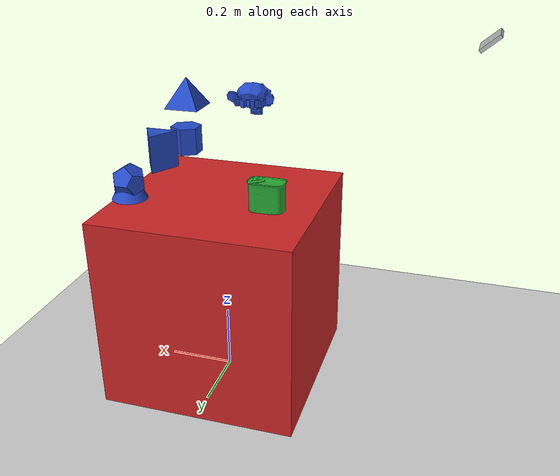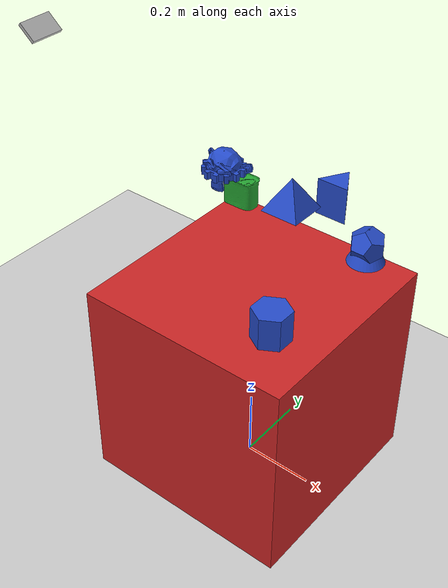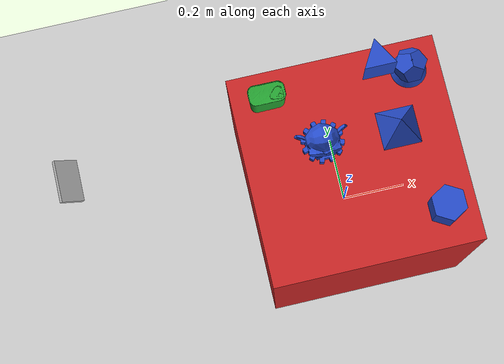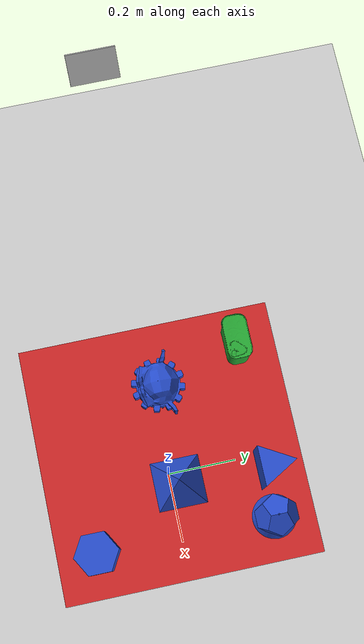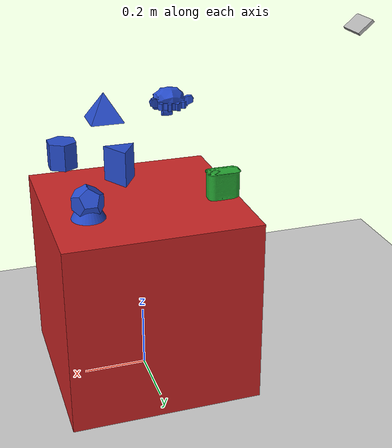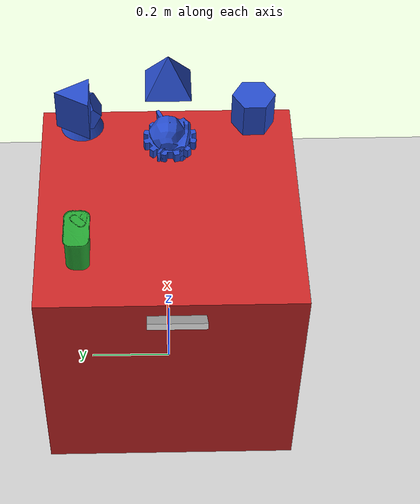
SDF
<sdf version="1.4">
 <world name="default">
  <include><uri>model://ground_plane</uri></include>
  <include><uri>model://demo_table</uri><name>demo_table1</name><pose>0 0 0.3 0 0 0</pose></include>
  <include><uri>model://demo_spam</uri><name>demo_spam1</name><pose>-0.2 0.2 0.7 0 0 0</pose></include>
  <include><uri>model://cone</uri><name>cone1</name><pose>0.2 0.2 0.7 0 0 0</pose></include>
  <include><uri>model://demo_cylinder</uri><name>demo_cylinder1</name><pose>0.2 -0.2 0.7 0 0 0</pose></include>
  <include><uri>model://prism_hex</uri><name>prism_hex1</name><pose>0.2 -0.2 0.7 0 0 0</pose></include>
  <include><uri>model://prism_tri</uri><name>prism_tri1</name><pose>0.1 0.2 0.8 0 0 0</pose></include>
  <include><uri>model://tetrahedron</uri><name>tetrahedron1</name><pose>0.1 0.0 0.9 0 0 0</pose></include>
  <include>
   <uri>model://tetrahedron_regular</uri>
   <name>tetrahedron_regular1</name>
   <pose>-0.1 0.0 0.9 0 0 0</pose>
  </include>
  <include><uri>model://dodecahedron</uri><name>dodecahedron1</name><pose>0.2 0.2 0.7 0 0 0</pose></include>
  <include><uri>model://gears</uri><name>gears1</name><pose>-0.1 0.0 0.9 0 0 0</pose></include>
  <include><uri>model://suzanne</uri><name>suzanne1</name><pose>-0.1 0.0 0.9 0 0 0</pose></include>
  <include><uri>model://sun</uri></include>
  <light name="user_point_light_0" type="point">
   <pose>0.573839 -0.613666 1 0 -0 0</pose>
   <diffuse>0.5 0.5 0.5 1</diffuse>
   <specular>0.1 0.1 0.1 1</specular>
   <attenuation>
    <range>20</range>
    <constant>0.5</constant>
    <linear>0.01</linear>
    <quadratic>0.001</quadratic>
   </attenuation>
   <cast_shadows>0</cast_shadows>
   <direction>0 0 -1</direction>
  </light>
  <light name="user_point_light_1" type="point">
   <pose>0.573839 -0.613666 1 0 -0 0</pose>
   <diffuse>0.5 0.5 0.5 1</diffuse>
   <specular>0.1 0.1 0.1 1</specular>
   <attenuation>
    <range>20</range>
    <constant>0.5</constant>
    <linear>0.01</linear>
    <quadratic>0.001</quadratic>
   </attenuation>
   <cast_shadows>0</cast_shadows>
   <direction>0 0 -1</direction>
  </light>
  <light name="user_spot_light_0" type="spot">
   <pose>-1.7095 -0.748352 1 0 -0 0</pose>
   <diffuse>0.5 0.5 0.5 1</diffuse>
   <specular>0.1 0.1 0.1 1</specular>
   <direction>0 0 -1</direction>
   <attenuation>
    <range>20</range>
    <constant>0.5</constant>
    <linear>0.01</linear>
    <quadratic>0.001</quadratic>
   </attenuation>
   <cast_shadows>0</cast_shadows>
   <spot><inner_angle>0.6</inner_angle><outer_angle>1</outer_angle><falloff>1</falloff></spot>
  </light>
  <model name="rgb_cam">
   <static>1</static>
   <pose>-0.715121 0.0 1.092078 0 0.6991 0</pose>
   <link name="rgb_camera">
    <inertial>
     <mass>0.1</mass>
     <inertia>
      <ixx>8.41666666667e-05</ixx>
      <ixy>0</ixy>
      <ixz>0</ixz>
      <iyy>3.08333333333e-05</iyy>
      <iyz>0</iyz>
      <izz>0.000113333333333</izz>
     </inertia>
    </inertial>
    <collision name="collision"><geometry><box><size>0.060 0.1 0.010</size></box></geometry></collision>
    <visual name="visual"><geometry><box><size>0.060 0.1 0.010</size></box></geometry></visual>
    <sensor name="camera" type="camera">
     <camera>
      <horizontal_fov>1.047</horizontal_fov>
      <image><width>640</width><height>480</height><format>R8G8B8</format></image>
      <clip><near>0.1</near><far>100</far></clip>
     </camera>
     <always_on>1</always_on>
     <update_rate>30</update_rate>
     <visualize>true</visualize>
     <plugin filename="libgazebo_ros_camera.so" name="camera_in_ros">
      <robotNamespace>dynamic_objects</robotNamespace>
      <cameraName>camera</cameraName>
      <imageTopicName>raw_image</imageTopicName>
      <cameraInfoTopicName>info_image</cameraInfoTopicName>
      <FrameName>cameraImage</FrameName>
      <Cy>0</Cy>
      <Cx>0</Cx>
      <updateRate>10.0</updateRate>
     </plugin>
    </sensor>
   </link>
  </model>
  <joint name="joint_to_world" type="fixed"><parent>world</parent><child>rgb_camera::link</child></joint>
  <atmosphere type="adiabatic"/>
  <scene><sky><clouds><speed>12</speed></clouds></sky></scene>
  <physics name="default_physics" default="0" type="ode">
   <max_step_size>0.001</max_step_size>
   <real_time_factor>1</real_time_factor>
   <real_time_update_rate>1000</real_time_update_rate>
  </physics>
  <plugin name="dynamic_world_plugin" filename="libdynamic_world_plugin.so">
   <update_frequency>1.0</update_frequency>
   <x_max>0.2</x_max>
   <x_min>-0.2</x_min>
   <y_max>0.2</y_max>
   <y_min>-0.2</y_min>
   <z_max>0.7</z_max>
   <z_min>0.7</z_min>
   <model_to_track_name>demo_spam1</model_to_track_name>
   <x_max_distractors>0.2</x_max_distractors>
   <x_min_distractors>-0.2</x_min_distractors>
   <y_max_distractors>0.2</y_max_distractors>
   <y_min_distractors>-0.2</y_min_distractors>
   <z_max_distractors>0.7</z_max_distractors>
   <z_min_distractors>0.7</z_min_distractors>
   <z_increment_percentage>0.1</z_increment_percentage>
   <roll_max>1.57</roll_max>
   <roll_min>-1.57</roll_min>
   <pitch_max>1.57</pitch_max>
   <pitch_min>-1.57</pitch_min>
   <yaw_max>1.57</yaw_max>
   <yaw_min>-1.57</yaw_min>
   <light_x_max>2.0</light_x_max>
   <light_x_min>-2.0</light_x_min>
   <light_y_max>2.0</light_y_max>
   <light_y_min>-2.0</light_y_min>
   <light_z_max>3.0</light_z_max>
   <light_z_min>1.0</light_z_min>
   <light_roll_max>1.57</light_roll_max>
   <light_roll_min>-1.57</light_roll_min>
   <light_pitch_max>1.57</light_pitch_max>
   <light_pitch_min>-1.57</light_pitch_min>
   <light_yaw_max>1.57</light_yaw_max>
   <light_yaw_min>-1.57</light_yaw_min>
   <cam_x_max>-0.615121</cam_x_max>
   <cam_x_min>-0.815121</cam_x_min>
   <cam_y_max>0.1</cam_y_max>
   <cam_y_min>-0.1</cam_y_min>
   <cam_z_max>1.192078</cam_z_max>
   <cam_z_min>0.992078</cam_z_min>
   <cam_roll_max>0.03</cam_roll_max>
   <cam_roll_min>-0.03</cam_roll_min>
   <cam_pitch_max>0.7291</cam_pitch_max>
   <cam_pitch_min>0.6691</cam_pitch_min>
   <cam_yaw_max>0.03</cam_yaw_max>
   <cam_yaw_min>-0.03</cam_yaw_min>
  </plugin>
 </world>
</sdf>

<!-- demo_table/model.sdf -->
<sdf version='1.4'>
  <model name="demo_table">
      <static>1</static>
      <link name='link'>
        <inertial>
          <mass>0.25</mass>
          <inertia>
            <ixx>0.015</ixx>
            <ixy>0.000000</ixy>
            <ixz>0.000000</ixz>
            <iyy>0.015</iyy>
            <iyz>0.000000</iyz>
            <izz>0.015</izz>
          </inertia>
        </inertial>
        <collision name='collision'>
          <geometry>
            <box>
              <size>0.6 0.6 0.6</size>
            </box>
          </geometry>
          <surface>
            <friction>
              <ode>
                <mu>30.0</mu>
                <mu2>30.0</mu2>
              </ode>
            </friction>
            <contact>
              <ode>
                <kp>1000000.0</kp>
                <kd>100.0</kd>
                <max_vel>1.0</max_vel>
                <min_depth>0.002</min_depth>
              </ode>
            </contact>
          </surface>
        </collision>
        <visual name='visual'>
          <geometry>
            <box>
              <size>0.6 0.6 0.6</size>
            </box>
          </geometry>
          <material>
            <script>
              <uri>file://media/materials/scripts/gazebo.material</uri>
              <name>Gazebo/Red</name>
            </script>
          </material>
        </visual>
        <velocity_decay>
          <linear>0.000000</linear>
          <angular>0.000000</angular>
        </velocity_decay>
        <self_collide>0</self_collide>
        <kinematic>0</kinematic>
        <gravity>1</gravity>
      </link>
  </model>
</sdf>

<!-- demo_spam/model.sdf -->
<sdf version='1.4'>
  <model name="demo_spam">
      <static>0</static>
      <link name='link'>
        <inertial>
          <mass>0.25</mass>
          <inertia>
            <ixx>0.00015</ixx>
            <ixy>0.000000</ixy>
            <ixz>0.000000</ixz>
            <iyy>0.00015</iyy>
            <iyz>0.000000</iyz>
            <izz>0.00015</izz>
          </inertia>
        </inertial>
        <collision name='collision'>
          <geometry>
            <box>
              <size>0.102 0.0601 0.0835</size>
            </box>
          </geometry>
          <surface>
            <friction>
              <ode>
                <mu>30.0</mu>
                <mu2>30.0</mu2>
              </ode>
            </friction>
            <contact>
              <ode>
                <kp>1000000.0</kp>
                <kd>100.0</kd>
                <max_vel>1.0</max_vel>
                <min_depth>0.002</min_depth>
              </ode>
            </contact>
          </surface>
        </collision>
        <visual name='visual'>
          <geometry>
            <mesh>
              <uri>model://demo_spam/meshes/nontextured_fixed.stl</uri>
              <scale>1 1 1</scale>
            </mesh>
          </geometry>
          <material>
            <script>
              <uri>file://media/materials/scripts/gazebo.material</uri>
              <name>Gazebo/Green</name>
            </script>
          </material>
        </visual>
        <velocity_decay>
          <linear>0.000000</linear>
          <angular>0.000000</angular>
        </velocity_decay>
        <self_collide>0</self_collide>
        <kinematic>0</kinematic>
        <gravity>1</gravity>
      </link>
  </model>
</sdf>

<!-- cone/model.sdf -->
<sdf version='1.4'>
  <model name="cone">
      <static>0</static>
      <link name='link'>
        <inertial>
          <mass>0.25</mass>
          <inertia>
            <ixx>0.00015</ixx>
            <ixy>0.000000</ixy>
            <ixz>0.000000</ixz>
            <iyy>0.00015</iyy>
            <iyz>0.000000</iyz>
            <izz>0.00015</izz>
          </inertia>
        </inertial>
        <collision name='collision'>
          <geometry>
            <mesh>
              <uri>model://cone/meshes/cone.stl</uri>
              <scale>1 1 1</scale>
            </mesh>
          </geometry>
          <surface>
            <friction>
              <ode>
                <mu>30.0</mu>
                <mu2>30.0</mu2>
              </ode>
            </friction>
            <contact>
              <ode>
                <kp>1000000.0</kp>
                <kd>100.0</kd>
                <max_vel>1.0</max_vel>
                <min_depth>0.002</min_depth>
              </ode>
            </contact>
          </surface>
        </collision>
        <visual name='visual'>
          <geometry>
            <mesh>
              <uri>model://cone/meshes/cone.stl</uri>
              <scale>1 1 1</scale>
            </mesh>
          </geometry>
          <material>
            <script>
              <uri>file://media/materials/scripts/gazebo.material</uri>
              <name>Gazebo/Blue</name>
            </script>
          </material>
        </visual>
        <velocity_decay>
          <linear>0.000000</linear>
          <angular>0.000000</angular>
        </velocity_decay>
        <self_collide>0</self_collide>
        <kinematic>0</kinematic>
        <gravity>1</gravity>
      </link>
  </model>
</sdf>

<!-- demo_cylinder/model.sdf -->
<sdf version='1.4'>
  <model name="demo_cylinder">
      <static>0</static>
      <link name='link'>
        <inertial>
          <mass>0.25</mass>
          <inertia>
            <ixx>1.3125e-05</ixx>
            <ixy>0.000000</ixy>
            <ixz>0.000000</ixz>
            <iyy>1.3125e-05</iyy>
            <iyz>0.000000</iyz>
            <izz>1.125e-05</izz>
          </inertia>
        </inertial>
        <collision name='collision'>
          <geometry>
            <cylinder>
              <radius>0.03</radius>
              <length>0.06</length>
            </cylinder>
          </geometry>
          <surface>
            <friction>
              <ode>
                <mu>30.0</mu>
                <mu2>30.0</mu2>
              </ode>
            </friction>
            <contact>
              <ode>
                <kp>1000000.0</kp>
                <kd>100.0</kd>
                <max_vel>1.0</max_vel>
                <min_depth>0.002</min_depth>
              </ode>
            </contact>
          </surface>
        </collision>
        <visual name='visual'>
          <geometry>
            <cylinder>
              <radius>0.03</radius>
              <length>0.06</length>
            </cylinder>
          </geometry>
          <material>
            <script>
              <uri>file://media/materials/scripts/gazebo.material</uri>
              <name>Gazebo/Blue</name>
            </script>
          </material>
        </visual>
        <velocity_decay>
          <linear>0.000000</linear>
          <angular>0.000000</angular>
        </velocity_decay>
        <self_collide>0</self_collide>
        <kinematic>0</kinematic>
        <gravity>1</gravity>
      </link>
  </model>
</sdf>

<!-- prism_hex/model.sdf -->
<sdf version='1.4'>
  <model name="prism_hex">
      <static>0</static>
      <link name='link'>
        <inertial>
          <mass>0.25</mass>
          <inertia>
            <ixx>0.00015</ixx>
            <ixy>0.000000</ixy>
            <ixz>0.000000</ixz>
            <iyy>0.00015</iyy>
            <iyz>0.000000</iyz>
            <izz>0.00015</izz>
          </inertia>
        </inertial>
        <collision name='collision'>
          <geometry>
            <mesh>
              <uri>model://prism_hex/meshes/prism_hex.stl</uri>
              <scale>1 1 1</scale>
            </mesh>
          </geometry>
          <surface>
            <friction>
              <ode>
                <mu>30.0</mu>
                <mu2>30.0</mu2>
              </ode>
            </friction>
            <contact>
              <ode>
                <kp>1000000.0</kp>
                <kd>100.0</kd>
                <max_vel>1.0</max_vel>
                <min_depth>0.002</min_depth>
              </ode>
            </contact>
          </surface>
        </collision>
        <visual name='visual'>
          <geometry>
            <mesh>
              <uri>model://prism_hex/meshes/prism_hex.stl</uri>
              <scale>1 1 1</scale>
            </mesh>
          </geometry>
          <material>
            <script>
              <uri>file://media/materials/scripts/gazebo.material</uri>
              <name>Gazebo/Blue</name>
            </script>
          </material>
        </visual>
        <velocity_decay>
          <linear>0.000000</linear>
          <angular>0.000000</angular>
        </velocity_decay>
        <self_collide>0</self_collide>
        <kinematic>0</kinematic>
        <gravity>1</gravity>
      </link>
  </model>
</sdf>

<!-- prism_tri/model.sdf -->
<sdf version='1.4'>
  <model name="prism_tri">
      <static>0</static>
      <link name='link'>
        <inertial>
          <mass>0.25</mass>
          <inertia>
            <ixx>0.00015</ixx>
            <ixy>0.000000</ixy>
            <ixz>0.000000</ixz>
            <iyy>0.00015</iyy>
            <iyz>0.000000</iyz>
            <izz>0.00015</izz>
          </inertia>
        </inertial>
        <collision name='collision'>
          <geometry>
            <mesh>
              <uri>model://prism_tri/meshes/prism_tri.stl</uri>
              <scale>1 1 1</scale>
            </mesh>
          </geometry>
          <surface>
            <friction>
              <ode>
                <mu>30.0</mu>
                <mu2>30.0</mu2>
              </ode>
            </friction>
            <contact>
              <ode>
                <kp>1000000.0</kp>
                <kd>100.0</kd>
                <max_vel>1.0</max_vel>
                <min_depth>0.002</min_depth>
              </ode>
            </contact>
          </surface>
        </collision>
        <visual name='visual'>
          <geometry>
            <mesh>
              <uri>model://prism_tri/meshes/prism_tri.stl</uri>
              <scale>1 1 1</scale>
            </mesh>
          </geometry>
          <material>
            <script>
              <uri>file://media/materials/scripts/gazebo.material</uri>
              <name>Gazebo/Blue</name>
            </script>
          </material>
        </visual>
        <velocity_decay>
          <linear>0.000000</linear>
          <angular>0.000000</angular>
        </velocity_decay>
        <self_collide>0</self_collide>
        <kinematic>0</kinematic>
        <gravity>1</gravity>
      </link>
  </model>
</sdf>

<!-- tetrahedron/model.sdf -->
<sdf version='1.4'>
  <model name="tetrahedron">
      <static>0</static>
      <link name='link'>
        <inertial>
          <mass>0.25</mass>
          <inertia>
            <ixx>0.00015</ixx>
            <ixy>0.000000</ixy>
            <ixz>0.000000</ixz>
            <iyy>0.00015</iyy>
            <iyz>0.000000</iyz>
            <izz>0.00015</izz>
          </inertia>
        </inertial>
        <collision name='collision'>
          <geometry>
            <mesh>
              <uri>model://tetrahedron/meshes/tetrahedron.stl</uri>
              <scale>1 1 1</scale>
            </mesh>
          </geometry>
          <surface>
            <friction>
              <ode>
                <mu>30.0</mu>
                <mu2>30.0</mu2>
              </ode>
            </friction>
            <contact>
              <ode>
                <kp>1000000.0</kp>
                <kd>100.0</kd>
                <max_vel>1.0</max_vel>
                <min_depth>0.002</min_depth>
              </ode>
            </contact>
          </surface>
        </collision>
        <visual name='visual'>
          <geometry>
            <mesh>
              <uri>model://tetrahedron/meshes/tetrahedron.stl</uri>
              <scale>1 1 1</scale>
            </mesh>
          </geometry>
          <material>
            <script>
              <uri>file://media/materials/scripts/gazebo.material</uri>
              <name>Gazebo/Blue</name>
            </script>
          </material>
        </visual>
        <velocity_decay>
          <linear>0.000000</linear>
          <angular>0.000000</angular>
        </velocity_decay>
        <self_collide>0</self_collide>
        <kinematic>0</kinematic>
        <gravity>1</gravity>
      </link>
  </model>
</sdf>

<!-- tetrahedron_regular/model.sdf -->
<sdf version='1.4'>
  <model name="tetrahedron_regular">
      <static>0</static>
      <link name='link'>
        <inertial>
          <mass>0.25</mass>
          <inertia>
            <ixx>0.00015</ixx>
            <ixy>0.000000</ixy>
            <ixz>0.000000</ixz>
            <iyy>0.00015</iyy>
            <iyz>0.000000</iyz>
            <izz>0.00015</izz>
          </inertia>
        </inertial>
        <collision name='collision'>
          <geometry>
            <mesh>
              <uri>model://tetrahedron_regular/meshes/tetrahedron_regular.stl</uri>
              <scale>1 1 1</scale>
            </mesh>
          </geometry>
          <surface>
            <friction>
              <ode>
                <mu>30.0</mu>
                <mu2>30.0</mu2>
              </ode>
            </friction>
            <contact>
              <ode>
                <kp>1000000.0</kp>
                <kd>100.0</kd>
                <max_vel>1.0</max_vel>
                <min_depth>0.002</min_depth>
              </ode>
            </contact>
          </surface>
        </collision>
        <visual name='visual'>
          <geometry>
            <mesh>
              <uri>model://tetrahedron_regular/meshes/tetrahedron_regular.stl</uri>
              <scale>1 1 1</scale>
            </mesh>
          </geometry>
          <material>
            <script>
              <uri>file://media/materials/scripts/gazebo.material</uri>
              <name>Gazebo/Blue</name>
            </script>
          </material>
        </visual>
        <velocity_decay>
          <linear>0.000000</linear>
          <angular>0.000000</angular>
        </velocity_decay>
        <self_collide>0</self_collide>
        <kinematic>0</kinematic>
        <gravity>1</gravity>
      </link>
  </model>
</sdf>

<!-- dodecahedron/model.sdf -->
<sdf version='1.4'>
  <model name="dodecahedron">
      <static>0</static>
      <link name='link'>
        <inertial>
          <mass>0.25</mass>
          <inertia>
            <ixx>0.00015</ixx>
            <ixy>0.000000</ixy>
            <ixz>0.000000</ixz>
            <iyy>0.00015</iyy>
            <iyz>0.000000</iyz>
            <izz>0.00015</izz>
          </inertia>
        </inertial>
        <collision name='collision'>
          <geometry>
            <mesh>
              <uri>model://dodecahedron/meshes/dodecahedron.stl</uri>
              <scale>1 1 1</scale>
            </mesh>
          </geometry>
          <surface>
            <friction>
              <ode>
                <mu>30.0</mu>
                <mu2>30.0</mu2>
              </ode>
            </friction>
            <contact>
              <ode>
                <kp>1000000.0</kp>
                <kd>100.0</kd>
                <max_vel>1.0</max_vel>
                <min_depth>0.002</min_depth>
              </ode>
            </contact>
          </surface>
        </collision>
        <visual name='visual'>
          <geometry>
            <mesh>
              <uri>model://dodecahedron/meshes/dodecahedron.stl</uri>
              <scale>1 1 1</scale>
            </mesh>
          </geometry>
          <material>
            <script>
              <uri>file://media/materials/scripts/gazebo.material</uri>
              <name>Gazebo/Blue</name>
            </script>
          </material>
        </visual>
        <velocity_decay>
          <linear>0.000000</linear>
          <angular>0.000000</angular>
        </velocity_decay>
        <self_collide>0</self_collide>
        <kinematic>0</kinematic>
        <gravity>1</gravity>
      </link>
  </model>
</sdf>

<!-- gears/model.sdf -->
<sdf version='1.4'>
  <model name="gears">
      <static>0</static>
      <link name='link'>
        <inertial>
          <mass>0.25</mass>
          <inertia>
            <ixx>0.00015</ixx>
            <ixy>0.000000</ixy>
            <ixz>0.000000</ixz>
            <iyy>0.00015</iyy>
            <iyz>0.000000</iyz>
            <izz>0.00015</izz>
          </inertia>
        </inertial>
        <collision name='collision'>
          <geometry>
            <mesh>
              <uri>model://gears/meshes/gears.stl</uri>
              <scale>1 1 1</scale>
            </mesh>
          </geometry>
          <surface>
            <friction>
              <ode>
                <mu>30.0</mu>
                <mu2>30.0</mu2>
              </ode>
            </friction>
            <contact>
              <ode>
                <kp>1000000.0</kp>
                <kd>100.0</kd>
                <max_vel>1.0</max_vel>
                <min_depth>0.002</min_depth>
              </ode>
            </contact>
          </surface>
        </collision>
        <visual name='visual'>
          <geometry>
            <mesh>
              <uri>model://gears/meshes/gears.stl</uri>
              <scale>1 1 1</scale>
            </mesh>
          </geometry>
          <material>
            <script>
              <uri>file://media/materials/scripts/gazebo.material</uri>
              <name>Gazebo/Blue</name>
            </script>
          </material>
        </visual>
        <velocity_decay>
          <linear>0.000000</linear>
          <angular>0.000000</angular>
        </velocity_decay>
        <self_collide>0</self_collide>
        <kinematic>0</kinematic>
        <gravity>1</gravity>
      </link>
  </model>
</sdf>

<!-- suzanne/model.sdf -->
<sdf version='1.4'>
  <model name="suzanne">
      <static>0</static>
      <link name='link'>
        <inertial>
          <mass>0.25</mass>
          <inertia>
            <ixx>0.00015</ixx>
            <ixy>0.000000</ixy>
            <ixz>0.000000</ixz>
            <iyy>0.00015</iyy>
            <iyz>0.000000</iyz>
            <izz>0.00015</izz>
          </inertia>
        </inertial>
        <collision name='collision'>
          <geometry>
            <mesh>
              <uri>model://suzanne/meshes/suzanne.stl</uri>
              <scale>1 1 1</scale>
            </mesh>
          </geometry>
          <surface>
            <friction>
              <ode>
                <mu>30.0</mu>
                <mu2>30.0</mu2>
              </ode>
            </friction>
            <contact>
              <ode>
                <kp>1000000.0</kp>
                <kd>100.0</kd>
                <max_vel>1.0</max_vel>
                <min_depth>0.002</min_depth>
              </ode>
            </contact>
          </surface>
        </collision>
        <visual name='visual'>
          <geometry>
            <mesh>
              <uri>model://suzanne/meshes/suzanne.stl</uri>
              <scale>1 1 1</scale>
            </mesh>
          </geometry>
          <material>
            <script>
              <uri>file://media/materials/scripts/gazebo.material</uri>
              <name>Gazebo/Blue</name>
            </script>
          </material>
        </visual>
        <velocity_decay>
          <linear>0.000000</linear>
          <angular>0.000000</angular>
        </velocity_decay>
        <self_collide>0</self_collide>
        <kinematic>0</kinematic>
        <gravity>1</gravity>
      </link>
  </model>
</sdf>
